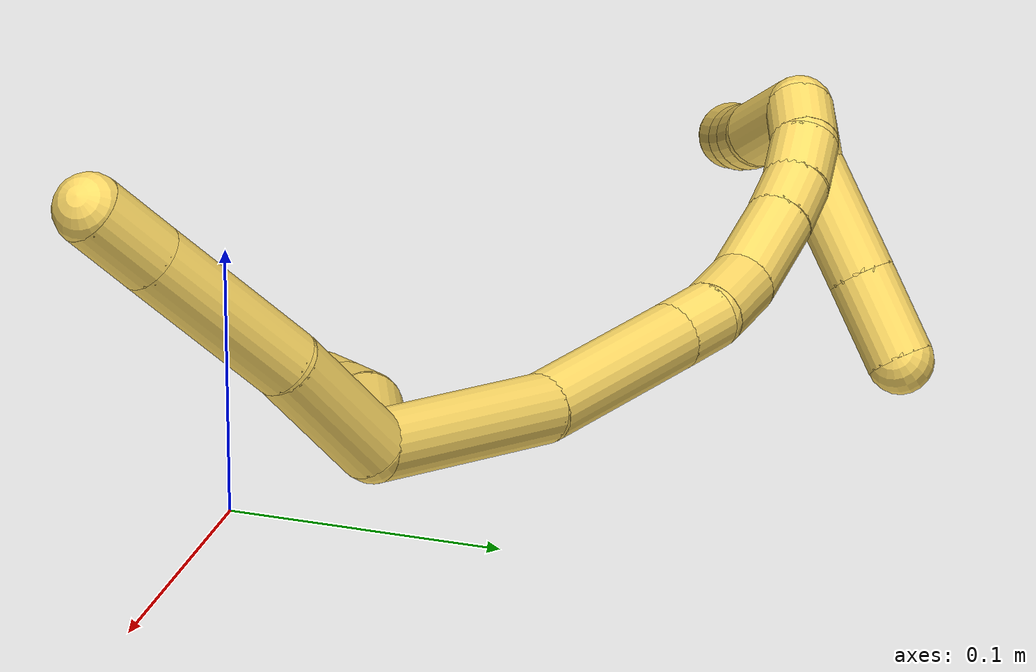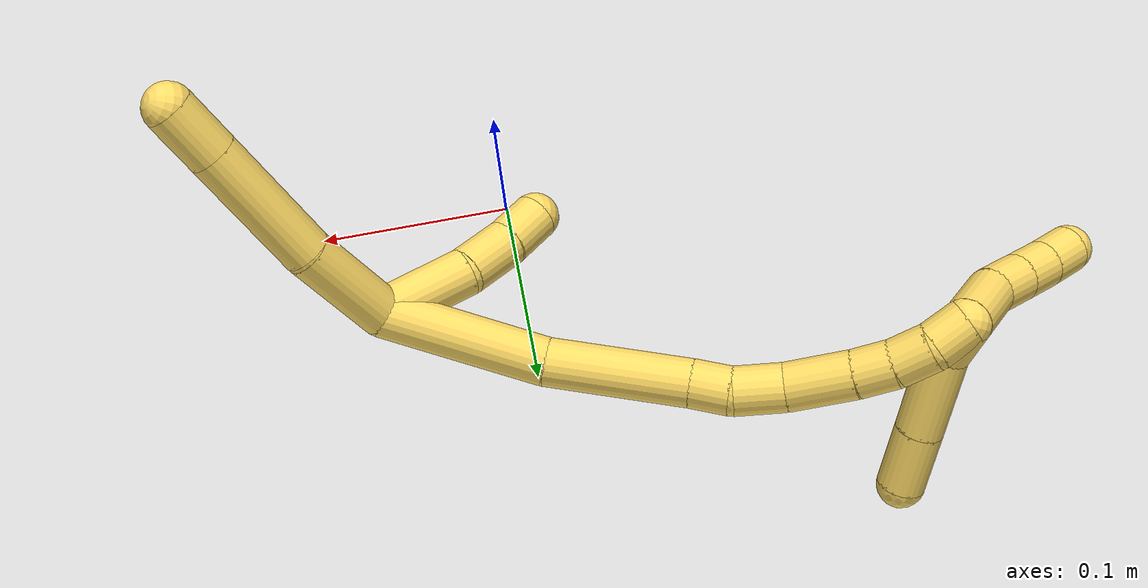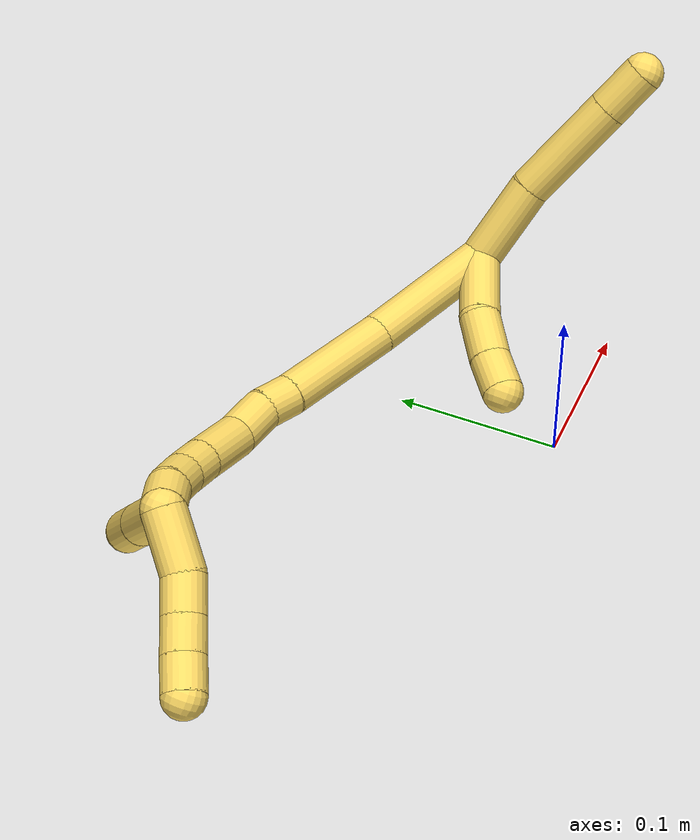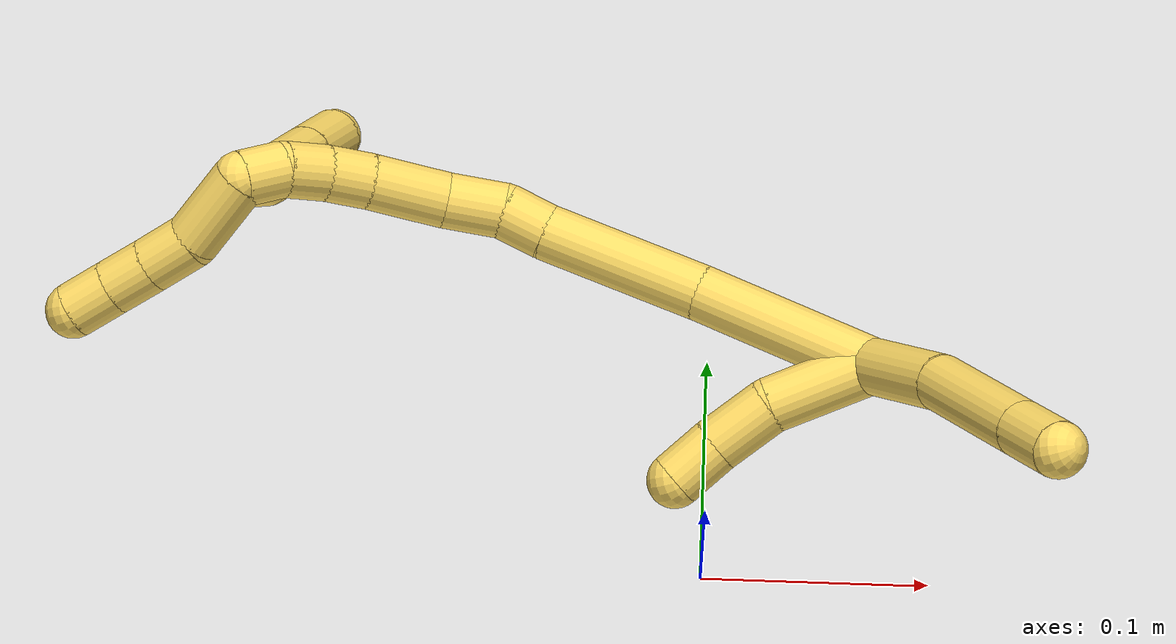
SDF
<sdf version="1.7">
 <world name="default">
  <model name="5">
   <static>0</static>
   <link name="5">
    <collision name="collision-cylinder-e_1_2_8">
     <pose>0.009346 0.003782 -0.024839 -2.99048 0.356132 -2.34527</pose>
     <geometry><cylinder><radius>0.0125</radius><length>0.053615</length></cylinder></geometry>
     <surface>
      <friction><ode><mu>1.16</mu><mu2>1.16</mu2><slip1>0</slip1><slip2>0</slip2></ode></friction>
      <contact><ode><kp>1e+06</kp><kd>1</kd><max_vel>0</max_vel><min_depth>0.001</min_depth></ode></contact>
     </surface>
    </collision>
    <visual name="visual-cylinder-e_1_2_8">
     <pose>0.009346 0.003782 -0.024839 -2.99048 0.356132 -2.34527</pose>
     <geometry><cylinder><radius>0.0125</radius><length>0.053615</length></cylinder></geometry>
     <material><ambient>1 0.858824 0.4 1</ambient></material>
    </visual>
    <collision name="collision-cylinder-e_2_8_9">
     <pose>0.035305 0.011604 -0.078397 -3.00185 0.520157 -2.62724</pose>
     <geometry><cylinder><radius>0.0125</radius><length>0.066845</length></cylinder></geometry>
     <surface>
      <friction><ode><mu>1.16</mu><mu2>1.16</mu2><slip1>0</slip1><slip2>0</slip2></ode></friction>
      <contact><ode><kp>1e+06</kp><kd>1</kd><max_vel>0</max_vel><min_depth>0.001</min_depth></ode></contact>
     </surface>
    </collision>
    <visual name="visual-cylinder-e_2_8_9">
     <pose>0.035305 0.011604 -0.078397 -3.00185 0.520157 -2.62724</pose>
     <geometry><cylinder><radius>0.0125</radius><length>0.066845</length></cylinder></geometry>
     <material><ambient>1 0.858824 0.4 1</ambient></material>
    </visual>
    <collision name="collision-cylinder-e_3_9_6">
     <pose>0.059224 0.017486 -0.119819 -2.99759 0.51762 -2.60963</pose>
     <geometry><cylinder><radius>0.0125</radius><length>0.02954</length></cylinder></geometry>
     <surface>
      <friction><ode><mu>1.16</mu><mu2>1.16</mu2><slip1>0</slip1><slip2>0</slip2></ode></friction>
      <contact><ode><kp>1e+06</kp><kd>1</kd><max_vel>0</max_vel><min_depth>0.001</min_depth></ode></contact>
     </surface>
    </collision>
    <visual name="visual-cylinder-e_3_9_6">
     <pose>0.059224 0.017486 -0.119819 -2.99759 0.51762 -2.60963</pose>
     <geometry><cylinder><radius>0.0125</radius><length>0.02954</length></cylinder></geometry>
     <material><ambient>1 0.858824 0.4 1</ambient></material>
    </visual>
    <collision name="collision-cylinder-e_1_2_10">
     <pose>0.011156 0.010931 0.017731 -0.552452 0.49172 -0.142028</pose>
     <geometry><cylinder><radius>0.0125</radius><length>0.047257</length></cylinder></geometry>
     <surface>
      <friction><ode><mu>1.16</mu><mu2>1.16</mu2><slip1>0</slip1><slip2>0</slip2></ode></friction>
      <contact><ode><kp>1e+06</kp><kd>1</kd><max_vel>0</max_vel><min_depth>0.001</min_depth></ode></contact>
     </surface>
    </collision>
    <visual name="visual-cylinder-e_1_2_10">
     <pose>0.011156 0.010931 0.017731 -0.552452 0.49172 -0.142028</pose>
     <geometry><cylinder><radius>0.0125</radius><length>0.047257</length></cylinder></geometry>
     <material><ambient>1 0.858824 0.4 1</ambient></material>
    </visual>
    <collision name="collision-cylinder-e_2_10_11">
     <pose>0.031501 0.025345 0.046356 -0.309439 0.676762 -0.109664</pose>
     <geometry><cylinder><radius>0.0125</radius><length>0.029344</length></cylinder></geometry>
     <surface>
      <friction><ode><mu>1.16</mu><mu2>1.16</mu2><slip1>0</slip1><slip2>0</slip2></ode></friction>
      <contact><ode><kp>1e+06</kp><kd>1</kd><max_vel>0</max_vel><min_depth>0.001</min_depth></ode></contact>
     </surface>
    </collision>
    <visual name="visual-cylinder-e_2_10_11">
     <pose>0.031501 0.025345 0.046356 -0.309439 0.676762 -0.109664</pose>
     <geometry><cylinder><radius>0.0125</radius><length>0.029344</length></cylinder></geometry>
     <material><ambient>1 0.858824 0.4 1</ambient></material>
    </visual>
    <collision name="collision-cylinder-e_3_11_5">
     <pose>0.048945 0.031554 0.06508 -0.3351 0.783387 -0.139492</pose>
     <geometry><cylinder><radius>0.0125</radius><length>0.023399</length></cylinder></geometry>
     <surface>
      <friction><ode><mu>1.16</mu><mu2>1.16</mu2><slip1>0</slip1><slip2>0</slip2></ode></friction>
      <contact><ode><kp>1e+06</kp><kd>1</kd><max_vel>0</max_vel><min_depth>0.001</min_depth></ode></contact>
     </surface>
    </collision>
    <visual name="visual-cylinder-e_3_11_5">
     <pose>0.048945 0.031554 0.06508 -0.3351 0.783387 -0.139492</pose>
     <geometry><cylinder><radius>0.0125</radius><length>0.023399</length></cylinder></geometry>
     <material><ambient>1 0.858824 0.4 1</ambient></material>
    </visual>
    <collision name="collision-cylinder-e_1_2_12">
     <pose>-0.013259 0.022538 0.03288 -0.600912 -0.321114 0.100273</pose>
     <geometry><cylinder><radius>0.0125</radius><length>0.08402</length></cylinder></geometry>
     <surface>
      <friction><ode><mu>1.16</mu><mu2>1.16</mu2><slip1>0</slip1><slip2>0</slip2></ode></friction>
      <contact><ode><kp>1e+06</kp><kd>1</kd><max_vel>0</max_vel><min_depth>0.001</min_depth></ode></contact>
     </surface>
    </collision>
    <visual name="visual-cylinder-e_1_2_12">
     <pose>-0.013259 0.022538 0.03288 -0.600912 -0.321114 0.100273</pose>
     <geometry><cylinder><radius>0.0125</radius><length>0.08402</length></cylinder></geometry>
     <material><ambient>1 0.858824 0.4 1</ambient></material>
    </visual>
    <collision name="collision-cylinder-e_2_12_13">
     <pose>-0.03475 0.07024 0.091099 -0.781906 -0.226543 0.093707</pose>
     <geometry><cylinder><radius>0.0125</radius><length>0.073295</length></cylinder></geometry>
     <surface>
      <friction><ode><mu>1.16</mu><mu2>1.16</mu2><slip1>0</slip1><slip2>0</slip2></ode></friction>
      <contact><ode><kp>1e+06</kp><kd>1</kd><max_vel>0</max_vel><min_depth>0.001</min_depth></ode></contact>
     </surface>
    </collision>
    <visual name="visual-cylinder-e_2_12_13">
     <pose>-0.03475 0.07024 0.091099 -0.781906 -0.226543 0.093707</pose>
     <geometry><cylinder><radius>0.0125</radius><length>0.073295</length></cylinder></geometry>
     <material><ambient>1 0.858824 0.4 1</ambient></material>
    </visual>
    <collision name="collision-cylinder-e_3_13_14">
     <pose>-0.045983 0.10282 0.122823 -0.860015 -0.29759 0.137284</pose>
     <geometry><cylinder><radius>0.0125</radius><length>0.020474</length></cylinder></geometry>
     <surface>
      <friction><ode><mu>1.16</mu><mu2>1.16</mu2><slip1>0</slip1><slip2>0</slip2></ode></friction>
      <contact><ode><kp>1e+06</kp><kd>1</kd><max_vel>0</max_vel><min_depth>0.001</min_depth></ode></contact>
     </surface>
    </collision>
    <visual name="visual-cylinder-e_3_13_14">
     <pose>-0.045983 0.10282 0.122823 -0.860015 -0.29759 0.137284</pose>
     <geometry><cylinder><radius>0.0125</radius><length>0.020474</length></cylinder></geometry>
     <material><ambient>1 0.858824 0.4 1</ambient></material>
    </visual>
    <collision name="collision-cylinder-e_4_14_15">
     <pose>-0.049033 0.119835 0.138315 -0.811709 -0.003624 0.001557</pose>
     <geometry><cylinder><radius>0.0125</radius><length>0.026462</length></cylinder></geometry>
     <surface>
      <friction><ode><mu>1.16</mu><mu2>1.16</mu2><slip1>0</slip1><slip2>0</slip2></ode></friction>
      <contact><ode><kp>1e+06</kp><kd>1</kd><max_vel>0</max_vel><min_depth>0.001</min_depth></ode></contact>
     </surface>
    </collision>
    <visual name="visual-cylinder-e_4_14_15">
     <pose>-0.049033 0.119835 0.138315 -0.811709 -0.003624 0.001557</pose>
     <geometry><cylinder><radius>0.0125</radius><length>0.026462</length></cylinder></geometry>
     <material><ambient>1 0.858824 0.4 1</ambient></material>
    </visual>
    <collision name="collision-cylinder-e_5_15_16">
     <pose>-0.0485 0.144824 0.156028 -1.06087 0.032939 -0.01932</pose>
     <geometry><cylinder><radius>0.0125</radius><length>0.035286</length></cylinder></geometry>
     <surface>
      <friction><ode><mu>1.16</mu><mu2>1.16</mu2><slip1>0</slip1><slip2>0</slip2></ode></friction>
      <contact><ode><kp>1e+06</kp><kd>1</kd><max_vel>0</max_vel><min_depth>0.001</min_depth></ode></contact>
     </surface>
    </collision>
    <visual name="visual-cylinder-e_5_15_16">
     <pose>-0.0485 0.144824 0.156028 -1.06087 0.032939 -0.01932</pose>
     <geometry><cylinder><radius>0.0125</radius><length>0.035286</length></cylinder></geometry>
     <material><ambient>1 0.858824 0.4 1</ambient></material>
    </visual>
    <collision name="collision-cylinder-e_6_16_17">
     <pose>-0.046897 0.169079 0.169222 -1.09333 0.101986 -0.062095</pose>
     <geometry><cylinder><radius>0.0125</radius><length>0.020066</length></cylinder></geometry>
     <surface>
      <friction><ode><mu>1.16</mu><mu2>1.16</mu2><slip1>0</slip1><slip2>0</slip2></ode></friction>
      <contact><ode><kp>1e+06</kp><kd>1</kd><max_vel>0</max_vel><min_depth>0.001</min_depth></ode></contact>
     </surface>
    </collision>
    <visual name="visual-cylinder-e_6_16_17">
     <pose>-0.046897 0.169079 0.169222 -1.09333 0.101986 -0.062095</pose>
     <geometry><cylinder><radius>0.0125</radius><length>0.020066</length></cylinder></geometry>
     <material><ambient>1 0.858824 0.4 1</ambient></material>
    </visual>
    <collision name="collision-cylinder-e_7_17_18">
     <pose>-0.043461 0.187058 0.177494 -1.1866 0.240827 -0.162828</pose>
     <geometry><cylinder><radius>0.0125</radius><length>0.020247</length></cylinder></geometry>
     <surface>
      <friction><ode><mu>1.16</mu><mu2>1.16</mu2><slip1>0</slip1><slip2>0</slip2></ode></friction>
      <contact><ode><kp>1e+06</kp><kd>1</kd><max_vel>0</max_vel><min_depth>0.001</min_depth></ode></contact>
     </surface>
    </collision>
    <visual name="visual-cylinder-e_7_17_18">
     <pose>-0.043461 0.187058 0.177494 -1.1866 0.240827 -0.162828</pose>
     <geometry><cylinder><radius>0.0125</radius><length>0.020247</length></cylinder></geometry>
     <material><ambient>1 0.858824 0.4 1</ambient></material>
    </visual>
    <collision name="collision-cylinder-e_8_18_1">
     <pose>-0.036188 0.203774 0.185664 -1.0377 0.503222 -0.291498</pose>
     <geometry><cylinder><radius>0.0125</radius><length>0.02015</length></cylinder></geometry>
     <surface>
      <friction><ode><mu>1.16</mu><mu2>1.16</mu2><slip1>0</slip1><slip2>0</slip2></ode></friction>
      <contact><ode><kp>1e+06</kp><kd>1</kd><max_vel>0</max_vel><min_depth>0.001</min_depth></ode></contact>
     </surface>
    </collision>
    <visual name="visual-cylinder-e_8_18_1">
     <pose>-0.036188 0.203774 0.185664 -1.0377 0.503222 -0.291498</pose>
     <geometry><cylinder><radius>0.0125</radius><length>0.02015</length></cylinder></geometry>
     <material><ambient>1 0.858824 0.4 1</ambient></material>
    </visual>
    <collision name="collision-cylinder-e_1_1_19">
     <pose>-0.019966 0.209419 0.204319 0.137188 0.671337 0.047927</pose>
     <geometry><cylinder><radius>0.0125</radius><length>0.036537</length></cylinder></geometry>
     <surface>
      <friction><ode><mu>1.16</mu><mu2>1.16</mu2><slip1>0</slip1><slip2>0</slip2></ode></friction>
      <contact><ode><kp>1e+06</kp><kd>1</kd><max_vel>0</max_vel><min_depth>0.001</min_depth></ode></contact>
     </surface>
    </collision>
    <visual name="visual-cylinder-e_1_1_19">
     <pose>-0.019966 0.209419 0.204319 0.137188 0.671337 0.047927</pose>
     <geometry><cylinder><radius>0.0125</radius><length>0.036537</length></cylinder></geometry>
     <material><ambient>1 0.858824 0.4 1</ambient></material>
    </visual>
    <collision name="collision-cylinder-e_2_19_20">
     <pose>-0.003392 0.209462 0.228127 -0.204471 0.486787 -0.05094</pose>
     <geometry><cylinder><radius>0.0125</radius><length>0.022274</length></cylinder></geometry>
     <surface>
      <friction><ode><mu>1.16</mu><mu2>1.16</mu2><slip1>0</slip1><slip2>0</slip2></ode></friction>
      <contact><ode><kp>1e+06</kp><kd>1</kd><max_vel>0</max_vel><min_depth>0.001</min_depth></ode></contact>
     </surface>
    </collision>
    <visual name="visual-cylinder-e_2_19_20">
     <pose>-0.003392 0.209462 0.228127 -0.204471 0.486787 -0.05094</pose>
     <geometry><cylinder><radius>0.0125</radius><length>0.022274</length></cylinder></geometry>
     <material><ambient>1 0.858824 0.4 1</ambient></material>
    </visual>
    <collision name="collision-cylinder-e_3_20_21">
     <pose>0.006687 0.213626 0.246563 -0.241425 0.493176 -0.061047</pose>
     <geometry><cylinder><radius>0.0125</radius><length>0.020571</length></cylinder></geometry>
     <surface>
      <friction><ode><mu>1.16</mu><mu2>1.16</mu2><slip1>0</slip1><slip2>0</slip2></ode></friction>
      <contact><ode><kp>1e+06</kp><kd>1</kd><max_vel>0</max_vel><min_depth>0.001</min_depth></ode></contact>
     </surface>
    </collision>
    <visual name="visual-cylinder-e_3_20_21">
     <pose>0.006687 0.213626 0.246563 -0.241425 0.493176 -0.061047</pose>
     <geometry><cylinder><radius>0.0125</radius><length>0.020571</length></cylinder></geometry>
     <material><ambient>1 0.858824 0.4 1</ambient></material>
    </visual>
    <collision name="collision-cylinder-e_4_21_4">
     <pose>0.016798 0.218322 0.263869 -0.288947 0.533363 -0.079449</pose>
     <geometry><cylinder><radius>0.0125</radius><length>0.020618</length></cylinder></geometry>
     <surface>
      <friction><ode><mu>1.16</mu><mu2>1.16</mu2><slip1>0</slip1><slip2>0</slip2></ode></friction>
      <contact><ode><kp>1e+06</kp><kd>1</kd><max_vel>0</max_vel><min_depth>0.001</min_depth></ode></contact>
     </surface>
    </collision>
    <visual name="visual-cylinder-e_4_21_4">
     <pose>0.016798 0.218322 0.263869 -0.288947 0.533363 -0.079449</pose>
     <geometry><cylinder><radius>0.0125</radius><length>0.020618</length></cylinder></geometry>
     <material><ambient>1 0.858824 0.4 1</ambient></material>
    </visual>
    <collision name="collision-cylinder-e_1_1_22">
     <pose>-0.03602 0.202114 0.192424 1.33 -0.457114 -0.360853</pose>
     <geometry><cylinder><radius>0.0125</radius><length>0.021256</length></cylinder></geometry>
     <surface>
      <friction><ode><mu>1.16</mu><mu2>1.16</mu2><slip1>0</slip1><slip2>0</slip2></ode></friction>
      <contact><ode><kp>1e+06</kp><kd>1</kd><max_vel>0</max_vel><min_depth>0.001</min_depth></ode></contact>
     </surface>
    </collision>
    <visual name="visual-cylinder-e_1_1_22">
     <pose>-0.03602 0.202114 0.192424 1.33 -0.457114 -0.360853</pose>
     <geometry><cylinder><radius>0.0125</radius><length>0.021256</length></cylinder></geometry>
     <material><ambient>1 0.858824 0.4 1</ambient></material>
    </visual>
    <collision name="collision-cylinder-e_2_22_23">
     <pose>-0.054789 0.176916 0.201977 1.14232 -0.676924 -0.444918</pose>
     <geometry><cylinder><radius>0.0125</radius><length>0.044951</length></cylinder></geometry>
     <surface>
      <friction><ode><mu>1.16</mu><mu2>1.16</mu2><slip1>0</slip1><slip2>0</slip2></ode></friction>
      <contact><ode><kp>1e+06</kp><kd>1</kd><max_vel>0</max_vel><min_depth>0.001</min_depth></ode></contact>
     </surface>
    </collision>
    <visual name="visual-cylinder-e_2_22_23">
     <pose>-0.054789 0.176916 0.201977 1.14232 -0.676924 -0.444918</pose>
     <geometry><cylinder><radius>0.0125</radius><length>0.044951</length></cylinder></geometry>
     <material><ambient>1 0.858824 0.4 1</ambient></material>
    </visual>
    <collision name="collision-cylinder-e_3_23_3">
     <pose>-0.07938 0.148951 0.214761 1.14162 -0.67147 -0.440842</pose>
     <geometry><cylinder><radius>0.0125</radius><length>0.033793</length></cylinder></geometry>
     <surface>
      <friction><ode><mu>1.16</mu><mu2>1.16</mu2><slip1>0</slip1><slip2>0</slip2></ode></friction>
      <contact><ode><kp>1e+06</kp><kd>1</kd><max_vel>0</max_vel><min_depth>0.001</min_depth></ode></contact>
     </surface>
    </collision>
    <visual name="visual-cylinder-e_3_23_3">
     <pose>-0.07938 0.148951 0.214761 1.14162 -0.67147 -0.440842</pose>
     <geometry><cylinder><radius>0.0125</radius><length>0.033793</length></cylinder></geometry>
     <material><ambient>1 0.858824 0.4 1</ambient></material>
    </visual>
    <collision name="collision-sphere-3">
     <pose>-0.089892 0.136923 0.220266 0 -0 0</pose>
     <geometry><sphere><radius>0.0125</radius></sphere></geometry>
     <surface>
      <friction><ode><mu>1.16</mu><mu2>1.16</mu2><slip1>0</slip1><slip2>0</slip2></ode></friction>
      <contact><ode><kp>1e+06</kp><kd>1</kd><max_vel>0</max_vel><min_depth>0.001</min_depth></ode></contact>
     </surface>
    </collision>
    <visual name="visual-sphere-3">
     <pose>-0.089892 0.136923 0.220266 0 -0 0</pose>
     <geometry><sphere><radius>0.0125</radius></sphere></geometry>
     <material><ambient>1 0.858824 0.4 1</ambient></material>
    </visual>
    <collision name="collision-sphere-23">
     <pose>-0.068868 0.16098 0.209256 0 -0 0</pose>
     <geometry><sphere><radius>0.0125</radius></sphere></geometry>
     <surface>
      <friction><ode><mu>1.16</mu><mu2>1.16</mu2><slip1>0</slip1><slip2>0</slip2></ode></friction>
      <contact><ode><kp>1e+06</kp><kd>1</kd><max_vel>0</max_vel><min_depth>0.001</min_depth></ode></contact>
     </surface>
    </collision>
    <visual name="visual-sphere-23">
     <pose>-0.068868 0.16098 0.209256 0 -0 0</pose>
     <geometry><sphere><radius>0.0125</radius></sphere></geometry>
     <material><ambient>1 0.858824 0.4 1</ambient></material>
    </visual>
    <collision name="collision-sphere-22">
     <pose>-0.040711 0.192852 0.194698 0 -0 0</pose>
     <geometry><sphere><radius>0.0125</radius></sphere></geometry>
     <surface>
      <friction><ode><mu>1.16</mu><mu2>1.16</mu2><slip1>0</slip1><slip2>0</slip2></ode></friction>
      <contact><ode><kp>1e+06</kp><kd>1</kd><max_vel>0</max_vel><min_depth>0.001</min_depth></ode></contact>
     </surface>
    </collision>
    <visual name="visual-sphere-22">
     <pose>-0.040711 0.192852 0.194698 0 -0 0</pose>
     <geometry><sphere><radius>0.0125</radius></sphere></geometry>
     <material><ambient>1 0.858824 0.4 1</ambient></material>
    </visual>
    <collision name="collision-sphere-4">
     <pose>0.022039 0.220851 0.272378 0 -0 0</pose>
     <geometry><sphere><radius>0.0125</radius></sphere></geometry>
     <surface>
      <friction><ode><mu>1.16</mu><mu2>1.16</mu2><slip1>0</slip1><slip2>0</slip2></ode></friction>
      <contact><ode><kp>1e+06</kp><kd>1</kd><max_vel>0</max_vel><min_depth>0.001</min_depth></ode></contact>
     </surface>
    </collision>
    <visual name="visual-sphere-4">
     <pose>0.022039 0.220851 0.272378 0 -0 0</pose>
     <geometry><sphere><radius>0.0125</radius></sphere></geometry>
     <material><ambient>1 0.858824 0.4 1</ambient></material>
    </visual>
    <collision name="collision-sphere-21">
     <pose>0.011556 0.215792 0.25536 0 -0 0</pose>
     <geometry><sphere><radius>0.0125</radius></sphere></geometry>
     <surface>
      <friction><ode><mu>1.16</mu><mu2>1.16</mu2><slip1>0</slip1><slip2>0</slip2></ode></friction>
      <contact><ode><kp>1e+06</kp><kd>1</kd><max_vel>0</max_vel><min_depth>0.001</min_depth></ode></contact>
     </surface>
    </collision>
    <visual name="visual-sphere-21">
     <pose>0.011556 0.215792 0.25536 0 -0 0</pose>
     <geometry><sphere><radius>0.0125</radius></sphere></geometry>
     <material><ambient>1 0.858824 0.4 1</ambient></material>
    </visual>
    <collision name="collision-sphere-20">
     <pose>0.001818 0.21146 0.237766 0 -0 0</pose>
     <geometry><sphere><radius>0.0125</radius></sphere></geometry>
     <surface>
      <friction><ode><mu>1.16</mu><mu2>1.16</mu2><slip1>0</slip1><slip2>0</slip2></ode></friction>
      <contact><ode><kp>1e+06</kp><kd>1</kd><max_vel>0</max_vel><min_depth>0.001</min_depth></ode></contact>
     </surface>
    </collision>
    <visual name="visual-sphere-20">
     <pose>0.001818 0.21146 0.237766 0 -0 0</pose>
     <geometry><sphere><radius>0.0125</radius></sphere></geometry>
     <material><ambient>1 0.858824 0.4 1</ambient></material>
    </visual>
    <collision name="collision-sphere-11">
     <pose>0.040689 0.028828 0.057251 0 -0 0</pose>
     <geometry><sphere><radius>0.0125</radius></sphere></geometry>
     <surface>
      <friction><ode><mu>1.16</mu><mu2>1.16</mu2><slip1>0</slip1><slip2>0</slip2></ode></friction>
      <contact><ode><kp>1e+06</kp><kd>1</kd><max_vel>0</max_vel><min_depth>0.001</min_depth></ode></contact>
     </surface>
    </collision>
    <visual name="visual-sphere-11">
     <pose>0.040689 0.028828 0.057251 0 -0 0</pose>
     <geometry><sphere><radius>0.0125</radius></sphere></geometry>
     <material><ambient>1 0.858824 0.4 1</ambient></material>
    </visual>
    <collision name="collision-sphere-10">
     <pose>0.022312 0.021861 0.035461 0 -0 0</pose>
     <geometry><sphere><radius>0.0125</radius></sphere></geometry>
     <surface>
      <friction><ode><mu>1.16</mu><mu2>1.16</mu2><slip1>0</slip1><slip2>0</slip2></ode></friction>
      <contact><ode><kp>1e+06</kp><kd>1</kd><max_vel>0</max_vel><min_depth>0.001</min_depth></ode></contact>
     </surface>
    </collision>
    <visual name="visual-sphere-10">
     <pose>0.022312 0.021861 0.035461 0 -0 0</pose>
     <geometry><sphere><radius>0.0125</radius></sphere></geometry>
     <material><ambient>1 0.858824 0.4 1</ambient></material>
    </visual>
    <collision name="collision-sphere-6">
     <pose>0.066533 0.019328 -0.132521 0 -0 0</pose>
     <geometry><sphere><radius>0.0125</radius></sphere></geometry>
     <surface>
      <friction><ode><mu>1.16</mu><mu2>1.16</mu2><slip1>0</slip1><slip2>0</slip2></ode></friction>
      <contact><ode><kp>1e+06</kp><kd>1</kd><max_vel>0</max_vel><min_depth>0.001</min_depth></ode></contact>
     </surface>
    </collision>
    <visual name="visual-sphere-6">
     <pose>0.066533 0.019328 -0.132521 0 -0 0</pose>
     <geometry><sphere><radius>0.0125</radius></sphere></geometry>
     <material><ambient>1 0.858824 0.4 1</ambient></material>
    </visual>
    <collision name="collision-sphere-9">
     <pose>0.051916 0.015644 -0.107117 0 -0 0</pose>
     <geometry><sphere><radius>0.0125</radius></sphere></geometry>
     <surface>
      <friction><ode><mu>1.16</mu><mu2>1.16</mu2><slip1>0</slip1><slip2>0</slip2></ode></friction>
      <contact><ode><kp>1e+06</kp><kd>1</kd><max_vel>0</max_vel><min_depth>0.001</min_depth></ode></contact>
     </surface>
    </collision>
    <visual name="visual-sphere-9">
     <pose>0.051916 0.015644 -0.107117 0 -0 0</pose>
     <geometry><sphere><radius>0.0125</radius></sphere></geometry>
     <material><ambient>1 0.858824 0.4 1</ambient></material>
    </visual>
    <collision name="collision-sphere-2">
     <geometry><sphere><radius>0.0125</radius></sphere></geometry>
     <surface>
      <friction><ode><mu>1.16</mu><mu2>1.16</mu2><slip1>0</slip1><slip2>0</slip2></ode></friction>
      <contact><ode><kp>1e+06</kp><kd>1</kd><max_vel>0</max_vel><min_depth>0.001</min_depth></ode></contact>
     </surface>
    </collision>
    <visual name="visual-sphere-2">
     <geometry><sphere><radius>0.0125</radius></sphere></geometry>
     <material><ambient>1 0.858824 0.4 1</ambient></material>
    </visual>
    <collision name="collision-sphere-19">
     <pose>-0.008602 0.207463 0.218489 0 -0 0</pose>
     <geometry><sphere><radius>0.0125</radius></sphere></geometry>
     <surface>
      <friction><ode><mu>1.16</mu><mu2>1.16</mu2><slip1>0</slip1><slip2>0</slip2></ode></friction>
      <contact><ode><kp>1e+06</kp><kd>1</kd><max_vel>0</max_vel><min_depth>0.001</min_depth></ode></contact>
     </surface>
    </collision>
    <visual name="visual-sphere-19">
     <pose>-0.008602 0.207463 0.218489 0 -0 0</pose>
     <geometry><sphere><radius>0.0125</radius></sphere></geometry>
     <material><ambient>1 0.858824 0.4 1</ambient></material>
    </visual>
    <collision name="collision-sphere-8">
     <pose>0.018693 0.007565 -0.049678 0 -0 0</pose>
     <geometry><sphere><radius>0.0125</radius></sphere></geometry>
     <surface>
      <friction><ode><mu>1.16</mu><mu2>1.16</mu2><slip1>0</slip1><slip2>0</slip2></ode></friction>
      <contact><ode><kp>1e+06</kp><kd>1</kd><max_vel>0</max_vel><min_depth>0.001</min_depth></ode></contact>
     </surface>
    </collision>
    <visual name="visual-sphere-8">
     <pose>0.018693 0.007565 -0.049678 0 -0 0</pose>
     <geometry><sphere><radius>0.0125</radius></sphere></geometry>
     <material><ambient>1 0.858824 0.4 1</ambient></material>
    </visual>
    <collision name="collision-sphere-5">
     <pose>0.057202 0.03428 0.072908 0 -0 0</pose>
     <geometry><sphere><radius>0.0125</radius></sphere></geometry>
     <surface>
      <friction><ode><mu>1.16</mu><mu2>1.16</mu2><slip1>0</slip1><slip2>0</slip2></ode></friction>
      <contact><ode><kp>1e+06</kp><kd>1</kd><max_vel>0</max_vel><min_depth>0.001</min_depth></ode></contact>
     </surface>
    </collision>
    <visual name="visual-sphere-5">
     <pose>0.057202 0.03428 0.072908 0 -0 0</pose>
     <geometry><sphere><radius>0.0125</radius></sphere></geometry>
     <material><ambient>1 0.858824 0.4 1</ambient></material>
    </visual>
    <collision name="collision-sphere-12">
     <pose>-0.026519 0.045076 0.065759 0 -0 0</pose>
     <geometry><sphere><radius>0.0125</radius></sphere></geometry>
     <surface>
      <friction><ode><mu>1.16</mu><mu2>1.16</mu2><slip1>0</slip1><slip2>0</slip2></ode></friction>
      <contact><ode><kp>1e+06</kp><kd>1</kd><max_vel>0</max_vel><min_depth>0.001</min_depth></ode></contact>
     </surface>
    </collision>
    <visual name="visual-sphere-12">
     <pose>-0.026519 0.045076 0.065759 0 -0 0</pose>
     <geometry><sphere><radius>0.0125</radius></sphere></geometry>
     <material><ambient>1 0.858824 0.4 1</ambient></material>
    </visual>
    <collision name="collision-sphere-13">
     <pose>-0.042982 0.095403 0.116438 0 -0 0</pose>
     <geometry><sphere><radius>0.0125</radius></sphere></geometry>
     <surface>
      <friction><ode><mu>1.16</mu><mu2>1.16</mu2><slip1>0</slip1><slip2>0</slip2></ode></friction>
      <contact><ode><kp>1e+06</kp><kd>1</kd><max_vel>0</max_vel><min_depth>0.001</min_depth></ode></contact>
     </surface>
    </collision>
    <visual name="visual-sphere-13">
     <pose>-0.042982 0.095403 0.116438 0 -0 0</pose>
     <geometry><sphere><radius>0.0125</radius></sphere></geometry>
     <material><ambient>1 0.858824 0.4 1</ambient></material>
    </visual>
    <collision name="collision-sphere-14">
     <pose>-0.048985 0.110237 0.129209 0 -0 0</pose>
     <geometry><sphere><radius>0.0125</radius></sphere></geometry>
     <surface>
      <friction><ode><mu>1.16</mu><mu2>1.16</mu2><slip1>0</slip1><slip2>0</slip2></ode></friction>
      <contact><ode><kp>1e+06</kp><kd>1</kd><max_vel>0</max_vel><min_depth>0.001</min_depth></ode></contact>
     </surface>
    </collision>
    <visual name="visual-sphere-14">
     <pose>-0.048985 0.110237 0.129209 0 -0 0</pose>
     <geometry><sphere><radius>0.0125</radius></sphere></geometry>
     <material><ambient>1 0.858824 0.4 1</ambient></material>
    </visual>
    <collision name="collision-sphere-15">
     <pose>-0.049081 0.129434 0.147421 0 -0 0</pose>
     <geometry><sphere><radius>0.0125</radius></sphere></geometry>
     <surface>
      <friction><ode><mu>1.16</mu><mu2>1.16</mu2><slip1>0</slip1><slip2>0</slip2></ode></friction>
      <contact><ode><kp>1e+06</kp><kd>1</kd><max_vel>0</max_vel><min_depth>0.001</min_depth></ode></contact>
     </surface>
    </collision>
    <visual name="visual-sphere-15">
     <pose>-0.049081 0.129434 0.147421 0 -0 0</pose>
     <geometry><sphere><radius>0.0125</radius></sphere></geometry>
     <material><ambient>1 0.858824 0.4 1</ambient></material>
    </visual>
    <collision name="collision-sphere-16">
     <pose>-0.047919 0.160214 0.164636 0 -0 0</pose>
     <geometry><sphere><radius>0.0125</radius></sphere></geometry>
     <surface>
      <friction><ode><mu>1.16</mu><mu2>1.16</mu2><slip1>0</slip1><slip2>0</slip2></ode></friction>
      <contact><ode><kp>1e+06</kp><kd>1</kd><max_vel>0</max_vel><min_depth>0.001</min_depth></ode></contact>
     </surface>
    </collision>
    <visual name="visual-sphere-16">
     <pose>-0.047919 0.160214 0.164636 0 -0 0</pose>
     <geometry><sphere><radius>0.0125</radius></sphere></geometry>
     <material><ambient>1 0.858824 0.4 1</ambient></material>
    </visual>
    <collision name="collision-sphere-17">
     <pose>-0.045876 0.177944 0.173809 0 -0 0</pose>
     <geometry><sphere><radius>0.0125</radius></sphere></geometry>
     <surface>
      <friction><ode><mu>1.16</mu><mu2>1.16</mu2><slip1>0</slip1><slip2>0</slip2></ode></friction>
      <contact><ode><kp>1e+06</kp><kd>1</kd><max_vel>0</max_vel><min_depth>0.001</min_depth></ode></contact>
     </surface>
    </collision>
    <visual name="visual-sphere-17">
     <pose>-0.045876 0.177944 0.173809 0 -0 0</pose>
     <geometry><sphere><radius>0.0125</radius></sphere></geometry>
     <material><ambient>1 0.858824 0.4 1</ambient></material>
    </visual>
    <collision name="collision-sphere-18">
     <pose>-0.041047 0.196173 0.181179 0 -0 0</pose>
     <geometry><sphere><radius>0.0125</radius></sphere></geometry>
     <surface>
      <friction><ode><mu>1.16</mu><mu2>1.16</mu2><slip1>0</slip1><slip2>0</slip2></ode></friction>
      <contact><ode><kp>1e+06</kp><kd>1</kd><max_vel>0</max_vel><min_depth>0.001</min_depth></ode></contact>
     </surface>
    </collision>
    <visual name="visual-sphere-18">
     <pose>-0.041047 0.196173 0.181179 0 -0 0</pose>
     <geometry><sphere><radius>0.0125</radius></sphere></geometry>
     <material><ambient>1 0.858824 0.4 1</ambient></material>
    </visual>
    <collision name="collision-sphere-1">
     <pose>-0.031329 0.211375 0.190149 0 -0 0</pose>
     <geometry><sphere><radius>0.0125</radius></sphere></geometry>
     <surface>
      <friction><ode><mu>1.16</mu><mu2>1.16</mu2><slip1>0</slip1><slip2>0</slip2></ode></friction>
      <contact><ode><kp>1e+06</kp><kd>1</kd><max_vel>0</max_vel><min_depth>0.001</min_depth></ode></contact>
     </surface>
    </collision>
    <visual name="visual-sphere-1">
     <pose>-0.031329 0.211375 0.190149 0 -0 0</pose>
     <geometry><sphere><radius>0.0125</radius></sphere></geometry>
     <material><ambient>1 0.858824 0.4 1</ambient></material>
    </visual>
    <inertial>
     <pose>-0.012248 0.094271 0.091927 0 -0 0</pose>
     <mass>0.75</mass>
     <inertia>
      <ixx>8.2e-05</ixx>
      <ixy>0</ixy>
      <ixz>0</ixz>
      <iyy>0.000143</iyy>
      <iyz>0</iyz>
      <izz>-4.8e-05</izz>
     </inertia>
    </inertial>
   </link>
   <pose>0.070553 0.07842 0.068292 2.32695 -0.059754 -1.70046</pose>
  </model>
 </world>
</sdf>
